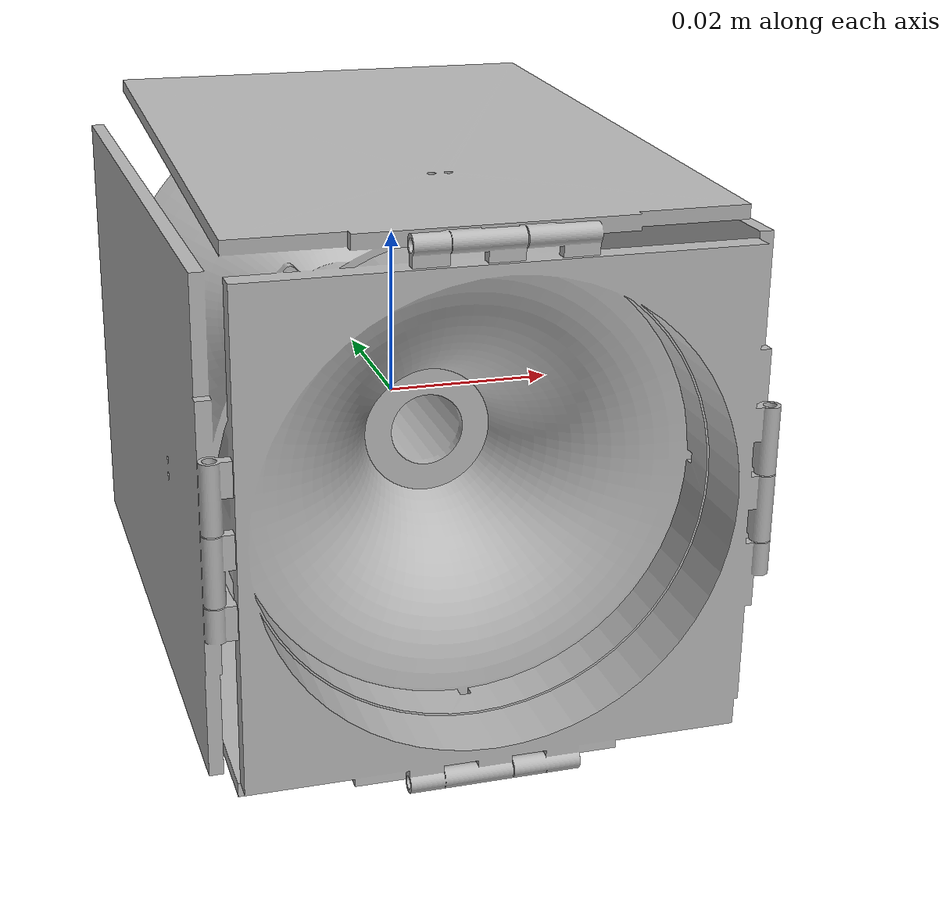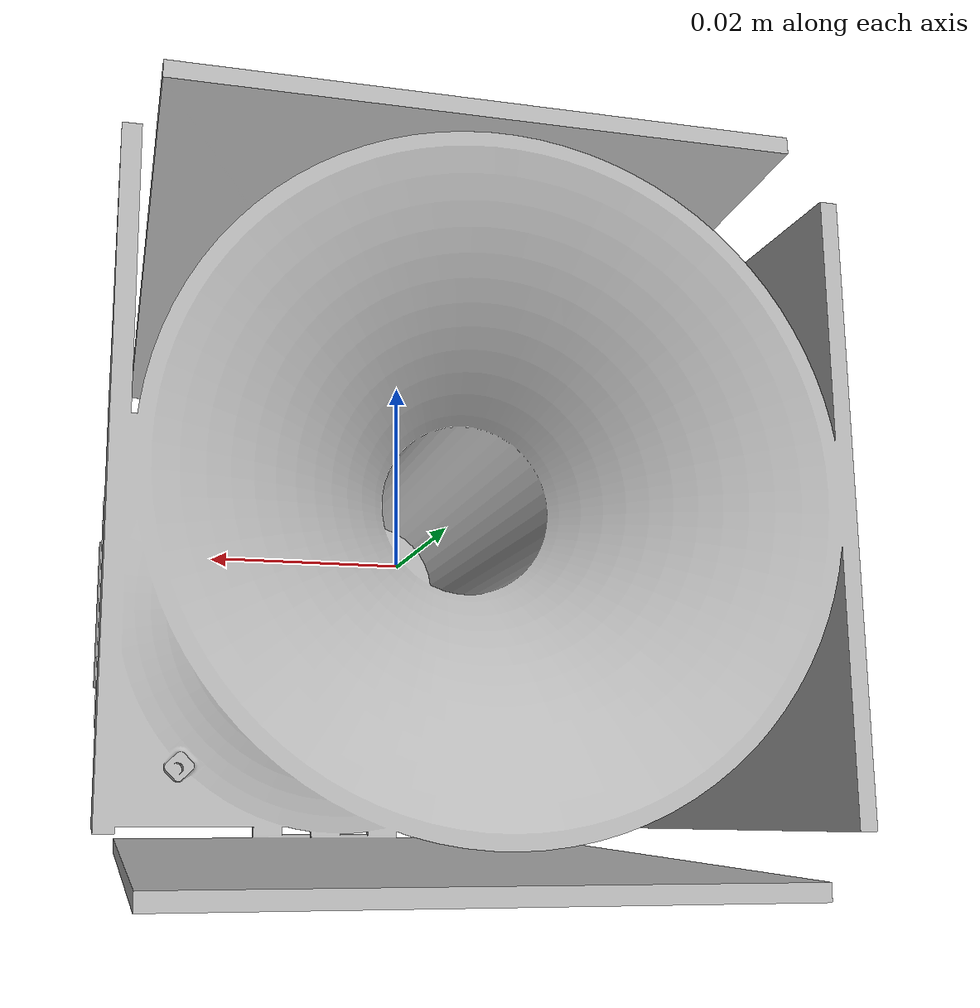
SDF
<?xml version="1.0"?>
<sdf version="1.5">
    <model name="sample_probe">
       <link name='base_link'>
      <pose frame=''> 0 0 0 0 -0 0</pose>
      <inertial>
        <pose frame=''>0 0 0 0 -0 0</pose>
        <mass>2</mass>
        <inertia>
          <ixx>0.0337</ixx>
          <ixy>0</ixy>
          <ixz>0</ixz>
          <iyy>0.0337</iyy>
          <iyz>0</iyz>
          <izz>0.0185</izz>
        </inertia>
      </inertial>
      <self_collide>0</self_collide>
      <kinematic>0</kinematic>
      <velocity_decay/>
      <gravity>1</gravity>
      <visual name="visual">
          <geometry>
            <mesh>
          <uri>model://sample_probe/meshes/sample_probe.dae</uri>
	</mesh>
          </geometry>
        </visual>
<collision name='base_link_inertia_collision'>
        <laser_retro>0</laser_retro>
        <max_contacts>1</max_contacts>
        <pose frame=''>0 0 0 0 -0 0</pose>
        <geometry>
          <mesh>
            <uri>model://sample_probe/meshes/sample_probe.dae</uri>
          </mesh>
        </geometry>
        <surface>
          <friction>
            <ode>
              <mu>1</mu>
              <mu2>1</mu2>
              <fdir1>0 0 0</fdir1>
              <slip1>0</slip1>
              <slip2>0</slip2>
            </ode>
          </friction>
          <bounce>
            <restitution_coefficient>0</restitution_coefficient>
            <threshold>1e+06</threshold>
          </bounce>
          <contact>
            <collide_without_contact>0</collide_without_contact>
            <collide_without_contact_bitmask>1</collide_without_contact_bitmask>
            <collide_bitmask>1</collide_bitmask>
            <ode>
              <soft_cfm>0</soft_cfm>
              <soft_erp>0.2</soft_erp>
              <kp>1e+13</kp>
              <kd>1</kd>
              <max_vel>0.01</max_vel>
              <min_depth>0</min_depth>
            </ode>
            <bullet>
              <split_impulse>1</split_impulse>
              <split_impulse_penetration_threshold>-0.01</split_impulse_penetration_threshold>
              <soft_cfm>0</soft_cfm>
              <soft_erp>0.2</soft_erp>
              <kp>1e+13</kp>
              <kd>1</kd>
            </bullet>
          </contact>
        </surface>
      </collision>
</link>
    </model>
 </sdf>
